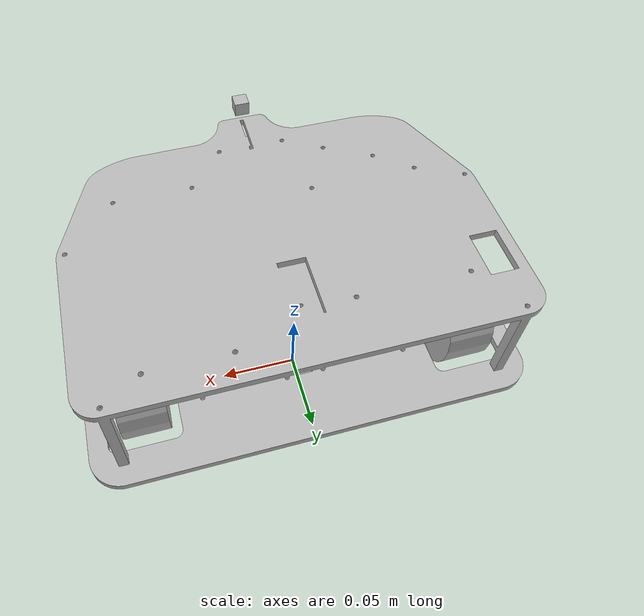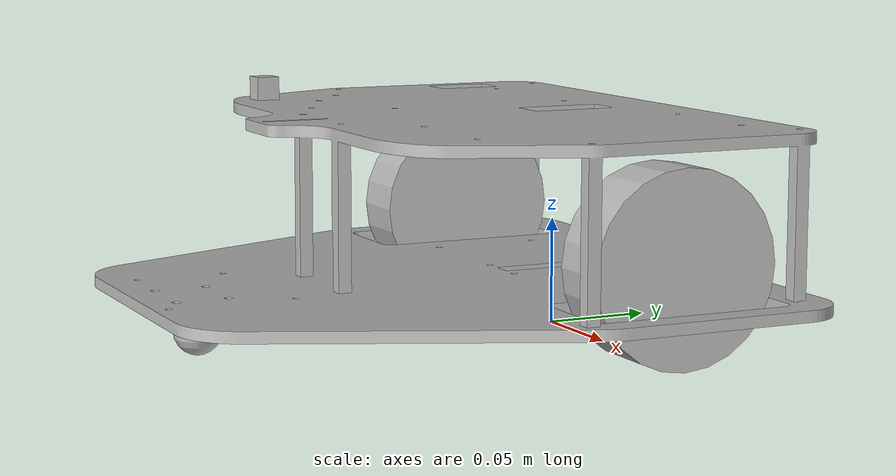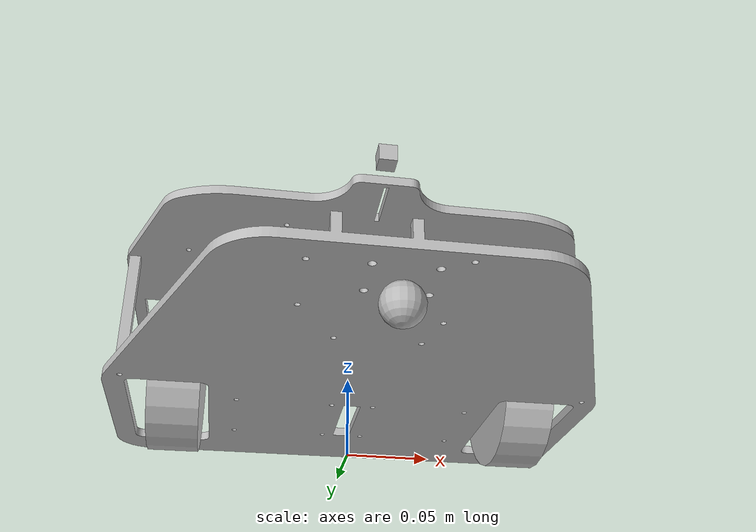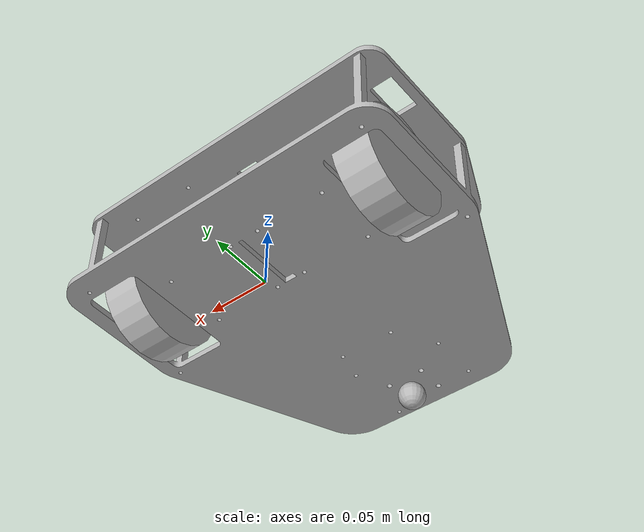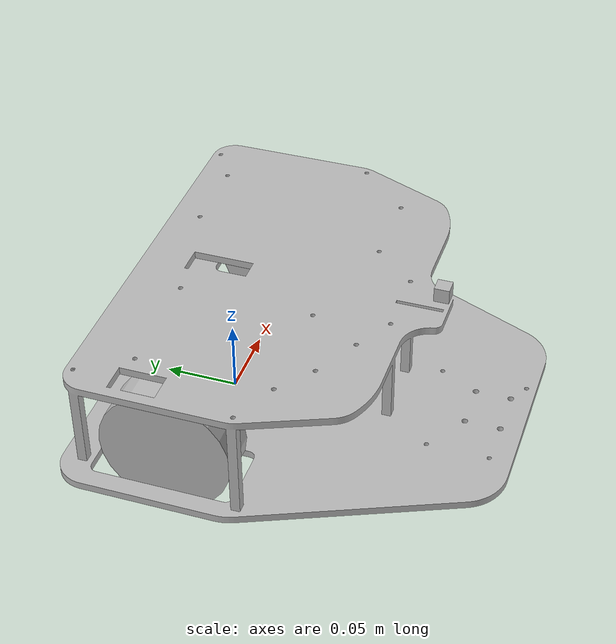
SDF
<?xml version="1.0"?>
<sdf version="1.4">
  <model name="ttfestcar">

    <plugin name="diff_drive" filename="libgazebo_ros_diff_drive.so">
      <left_joint>left_wheel_joint</left_joint>
      <right_joint>right_wheel_joint</right_joint>
      <wheel_separation>0.182</wheel_separation>
      <wheel_diameter>0.088</wheel_diameter>
      <command_topic>cmd_vel</command_topic>
      <publish_odom>true</publish_odom>
      <publish_odom_tf>true</publish_odom_tf>
      <publish_wheel_tf>false</publish_wheel_tf>
      <odometry_topic>odom</odometry_topic>
    </plugin>

    <link name='chassis'>
      <pose>0 0 0.022 0 0 0</pose>

      <inertial>
        <mass>10</mass>
        <auto>true</auto>
      </inertial>

      <visual name='visual'>
        <geometry>
          <mesh>
            <uri>model://ttfestcar/meshes/rascar.dae</uri>
          </mesh>
        </geometry>
      </visual>

      <collision name="collision">
        <geometry>
          <mesh>
            <uri>model://ttfestcar/meshes/rascar.dae</uri>
          </mesh>
        </geometry>
      </collision>
    </link>

    <link name='left_wheel'>
      <pose relative_to='chassis'>-0.106 0 0.022 0 1.57 0</pose>

      <inertial>
        <mass>10</mass>
        <inertia>
          <ixx>0.0016</ixx>
          <ixy>0</ixy>
          <ixz>0</ixz>
          <iyy>0.0016</iyy>
          <iyz>0</iyz>
          <izz>0.00088</izz>
        </inertia>
      </inertial>

      <visual name='visual'>
        <geometry>
          <cylinder>
            <radius>0.044</radius>
            <length>0.03</length>
          </cylinder>
        </geometry>
      </visual>

      <collision name="collision">
        <geometry>
          <cylinder>
            <radius>0.044</radius>
            <length>0.03</length>
          </cylinder>
        </geometry>
      </collision>
    </link>

    <link name='right_wheel'>
      <pose relative_to='chassis'>0.106 0 0.022 0 1.57 0</pose>

      <inertial>
        <mass>10</mass>
        <inertia>
          <ixx>0.0016</ixx>
          <ixy>0</ixy>
          <ixz>0</ixz>
          <iyy>0.0016</iyy>
          <iyz>0</iyz>
          <izz>0.00088</izz>
        </inertia>
      </inertial>

      <visual name='visual'>
        <geometry>
          <cylinder>
            <radius>0.044</radius>
            <length>0.03</length>
          </cylinder>
        </geometry>
      </visual>

      <collision name="collision">
        <geometry>
          <cylinder>
            <radius>0.044</radius>
            <length>0.03</length>
          </cylinder>
        </geometry>
      </collision>
    </link>

    <link name='caster_wheel'>
      <pose relative_to='chassis'>0 -0.1765 -0.011 0 0 0</pose>
      <inertial>
        <mass>5</mass>
        <inertia>
          <ixx>0.000683</ixx>
          <iyy>0.000683</iyy>
          <izz>0.000683</izz>
        </inertia>
      </inertial>

      <visual name='visual'>
        <geometry>
          <sphere>
            <radius>0.011</radius>
          </sphere>
        </geometry>
      </visual>

      <collision name='collision'>
        <geometry>
          <sphere>
            <radius>0.011</radius>
          </sphere>
        </geometry>
      </collision>
    </link>

    <joint name='left_wheel_joint' type='revolute'>
      <parent>chassis</parent>
      <child>left_wheel</child>
      <axis>
        <xyz expressed_in='__model__'>1 0 0</xyz>
        <limit>
          <lower>-1.79769e+308</lower>
          <upper>1.79769e+308</upper>
        </limit>
        <dynamics>
          <friction>12.031606150200002</friction>
        </dynamics>
      </axis>
    </joint>

    <joint name='right_wheel_joint' type='revolute'>
      <parent>chassis</parent>
      <child>right_wheel</child>
      <axis>
        <xyz expressed_in='__model__'>1 0 0</xyz>
        <limit>
          <lower>-1.79769e+308</lower>
          <upper>1.79769e+308</upper>
        </limit>
        <dynamics>
          <friction>12.031606150200002</friction>
        </dynamics>
      </axis>
    </joint>

    <joint name='caster_wheel_joint' type='ball'>
      <parent>chassis</parent>
      <child>caster_wheel</child>
    </joint>

    <link name="camera_link">
      <pose relative_to="chassis">0 -0.144 0.095 0 0 -1.57</pose>
      <inertial>
        <mass>0.1</mass>
        <inertia>
          <ixx>0.000166667</ixx>
          <iyy>0.000166667</iyy>
          <izz>0.000166667</izz>
        </inertia>
      </inertial>

      <visual name="visual">
        <geometry>
          <box>
            <size>0.01 0.01 0.01</size>
          </box>
        </geometry>
      </visual>

      <collision name="collision">
        <geometry>
          <box>
            <size>0.1 0.1 0.1</size>
          </box>
        </geometry>
      </collision>

      <sensor name="camera" type="camera">
        <camera>
          <horizontal_fov>1.0855947947</horizontal_fov>
          <image>
            <width>829</width>
            <height>621</height>
          </image>
          <clip>
            <near>0.1</near>
            <far>100</far>
          </clip>
        </camera>
        <plugin name="camera_controller" filename="libgazebo_ros_camera.so">
          <always_on>1</always_on>
          <update_rate>30</update_rate>
          <cameraName>/camera</cameraName>
          <imageTopicName>image_raw</imageTopicName>
          <cameraInfoTopicName>camera_info</cameraInfoTopicName>
          <frameName>camera</frameName>
        </plugin>

      </sensor>
    </link>

    <joint name='camera_joint' type='fixed'>
      <pose relative_to='camera_link' />
      <parent>chassis</parent>
      <child>camera_link</child>
    </joint>

    <link name="hokuyo_link">

      <sensor name="head_hokuyo_sensor" type="ray">
          <always_on>true</always_on>
          <visualize>true</visualize>
          <pose relative_to='chassis'>0 -0.155 0.054 0 0 0</pose>
          <update_rate>100</update_rate>
          <ray>
              <scan>
                  <horizontal>
                      <samples>2000</samples>
                      <resolution>0.2</resolution>
                      <min_angle>-3.14</min_angle>
                      <max_angle>3.14</max_angle>
                  </horizontal>
              </scan>
              <range>
                  <min>0.15</min>
                  <max>6.0</max>
                  <resolution>0.5</resolution>
              </range>
              <noise>
                  <type>gaussian</type>
                  <mean>0.0</mean>
                  <stddev>0.01</stddev>
              </noise>
          </ray>
          <plugin name="gazebo_ros_head_hokuyo_controller"
              filename="libgazebo_ros_ray_sensor.so">
              <ros>
                  <namespace>/lidar</namespace>
                  <remapping>~/out:=data</remapping>
              </ros>
              <output_type>sensor_msgs/LaserScan</output_type>
              <frameName>hokuyo_link</frameName>
          </plugin>
      </sensor>
  </link>

  <joint name="hokuyo_joint" type="fixed">
    <parent>chassis</parent>
    <child>hokuyo_link</child>
    <pose>0 0 0 0 0 0</pose>
</joint>

  </model>
</sdf>
